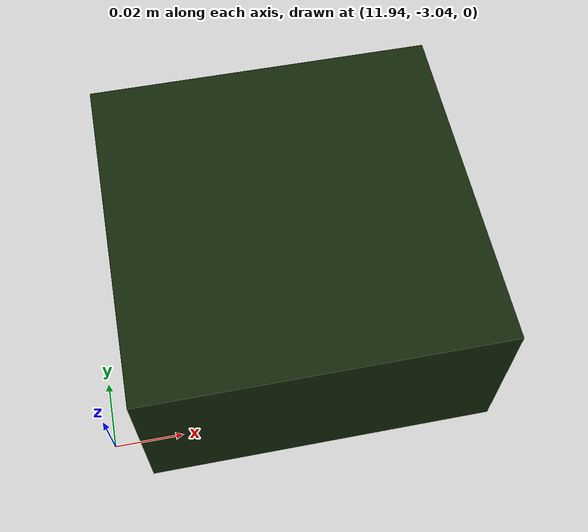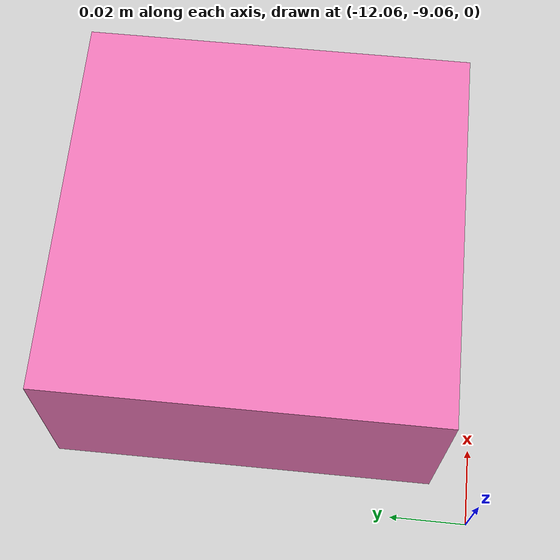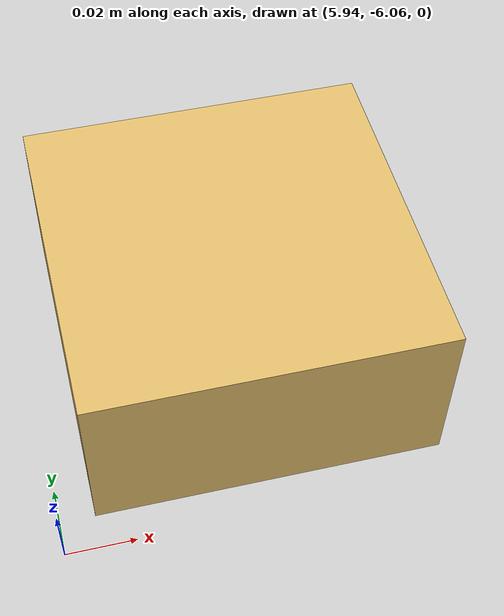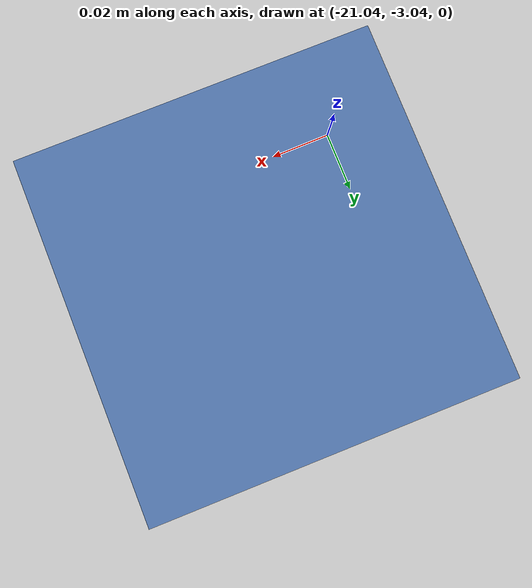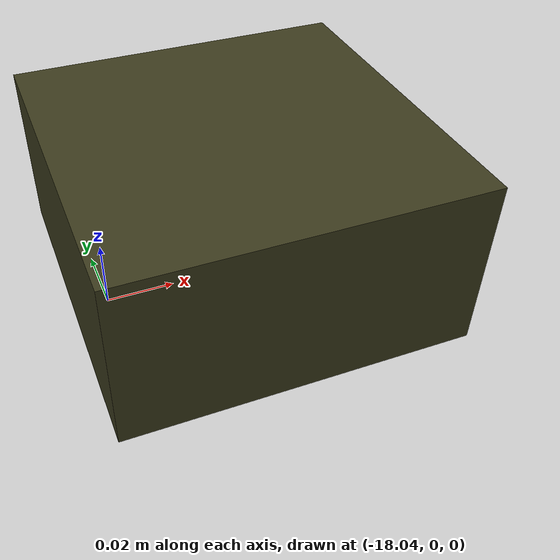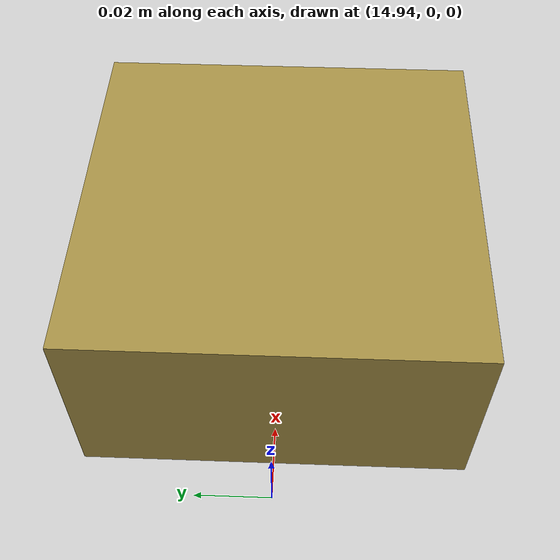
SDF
<?xml version="1.0" ?>
<sdf version="1.6">
  <world name="my_world">
   <gravity>0 0 -9.8</gravity>
    <model name='ground_plane'>
      <static>1</static>
      <link name='link'>
        <collision name='collision'>
          <geometry>
            <plane>
              <normal>0 0 1</normal>
              <size>200 200</size>
            </plane>
          </geometry>
          <surface>
            <friction>
              <ode>
                <mu>100</mu>
                <mu2>50</mu2>
              </ode>
              <torsional>
                <ode/>
              </torsional>
            </friction>
            <contact>
              <ode/>
            </contact>
            <bounce/>
          </surface>
          <max_contacts>10</max_contacts>
        </collision>
        <visual name='visual'>
          <cast_shadows>0</cast_shadows>
          <geometry>
            <plane>
              <normal>0 0 1</normal>
              <size>200 200</size>
            </plane>
          </geometry>
          <geometry>
            <mesh>
              <uri>file://media/materials/textures/grid_square.dae</uri>
              <scale>1 1 1</scale> <!-- Adjust the length and width of each grid square -->
            </mesh>
          </geometry>
          <material>
            <script>
              <uri>file://media/materials/scripts/gazebo.material</uri>
              <name>Gazebo/Grey</name>
            </script>
          </material>
        </visual>
        <self_collide>0</self_collide>
        <enable_wind>0</enable_wind>
        <kinematic>0</kinematic>
      </link>
    </model>

      <model name="AddisAbaba">
      <pose>0 0 0 0 -0 0</pose>
      <static>true</static>
      <link name='link'>
        <visual name='visual'>
          <geometry>
            <box>
              <size>0.1 0.1 0.1</size>
            </box>
          </geometry>
          <material>
            <ambient>0.20301479589125992 0.012778125704080656 0.9803190365854526 1</ambient>
            <diffuse>0.20301479589125992 0.012778125704080656 0.9803190365854526 1</diffuse>
            <emissive>0.20301479589125992 0.012778125704080656 0.9803190365854526 1</emissive>
          </material>
        </visual>
        <self_collide>0</self_collide>
        <inertial>
          <pose>0 0 0 0 -0 0</pose>
          <inertia>
            <ixx>1</ixx>
            <ixy>0</ixy>
            <ixz>0</ixz>
            <iyy>1</iyy>
            <iyz>0</iyz>
            <izz>1</izz>
          </inertia>
          <mass>1</mass>
        </inertial>
        <enable_wind>0</enable_wind>
        <kinematic>0</kinematic>
      </link>
    </model>

      <model name="Debrebirhan">
      <pose>3 3 0 0 -0 0</pose>
      <static>true</static>
      <link name='link'>
        <visual name='visual'>
          <geometry>
            <box>
              <size>0.1 0.1 0.1</size>
            </box>
          </geometry>
          <material>
            <ambient>0.010998680353502155 0.10414494394148321 0.07623011025620385 1</ambient>
            <diffuse>0.010998680353502155 0.10414494394148321 0.07623011025620385 1</diffuse>
            <emissive>0.010998680353502155 0.10414494394148321 0.07623011025620385 1</emissive>
          </material>
        </visual>
        <self_collide>0</self_collide>
        <inertial>
          <pose>0 0 0 0 -0 0</pose>
          <inertia>
            <ixx>1</ixx>
            <ixy>0</ixy>
            <ixz>0</ixz>
            <iyy>1</iyy>
            <iyz>0</iyz>
            <izz>1</izz>
          </inertia>
          <mass>1</mass>
        </inertial>
        <enable_wind>0</enable_wind>
        <kinematic>0</kinematic>
      </link>
    </model>

      <model name="Adama">
      <pose>3 0 0 0 -0 0</pose>
      <static>true</static>
      <link name='link'>
        <visual name='visual'>
          <geometry>
            <box>
              <size>0.1 0.1 0.1</size>
            </box>
          </geometry>
          <material>
            <ambient>0.905742001813767 0.571463655940841 0.5598265238198772 1</ambient>
            <diffuse>0.905742001813767 0.571463655940841 0.5598265238198772 1</diffuse>
            <emissive>0.905742001813767 0.571463655940841 0.5598265238198772 1</emissive>
          </material>
        </visual>
        <self_collide>0</self_collide>
        <inertial>
          <pose>0 0 0 0 -0 0</pose>
          <inertia>
            <ixx>1</ixx>
            <ixy>0</ixy>
            <ixz>0</ixz>
            <iyy>1</iyy>
            <iyz>0</iyz>
            <izz>1</izz>
          </inertia>
          <mass>1</mass>
        </inertial>
        <enable_wind>0</enable_wind>
        <kinematic>0</kinematic>
      </link>
    </model>

      <model name="Batu">
      <pose>0 -3 0 0 -0 0</pose>
      <static>true</static>
      <link name='link'>
        <visual name='visual'>
          <geometry>
            <box>
              <size>0.1 0.1 0.1</size>
            </box>
          </geometry>
          <material>
            <ambient>0.16129224939287234 0.6905062926652275 0.9367002350211904 1</ambient>
            <diffuse>0.16129224939287234 0.6905062926652275 0.9367002350211904 1</diffuse>
            <emissive>0.16129224939287234 0.6905062926652275 0.9367002350211904 1</emissive>
          </material>
        </visual>
        <self_collide>0</self_collide>
        <inertial>
          <pose>0 0 0 0 -0 0</pose>
          <inertia>
            <ixx>1</ixx>
            <ixy>0</ixy>
            <ixz>0</ixz>
            <iyy>1</iyy>
            <iyz>0</iyz>
            <izz>1</izz>
          </inertia>
          <mass>1</mass>
        </inertial>
        <enable_wind>0</enable_wind>
        <kinematic>0</kinematic>
      </link>
    </model>

      <model name="Assela">
      <pose>6 -3 0 0 -0 0</pose>
      <static>true</static>
      <link name='link'>
        <visual name='visual'>
          <geometry>
            <box>
              <size>0.1 0.1 0.1</size>
            </box>
          </geometry>
          <material>
            <ambient>0.44919793513015127 0.8666901576843767 0.1377827231155372 1</ambient>
            <diffuse>0.44919793513015127 0.8666901576843767 0.1377827231155372 1</diffuse>
            <emissive>0.44919793513015127 0.8666901576843767 0.1377827231155372 1</emissive>
          </material>
        </visual>
        <self_collide>0</self_collide>
        <inertial>
          <pose>0 0 0 0 -0 0</pose>
          <inertia>
            <ixx>1</ixx>
            <ixy>0</ixy>
            <ixz>0</ixz>
            <iyy>1</iyy>
            <iyz>0</iyz>
            <izz>1</izz>
          </inertia>
          <mass>1</mass>
        </inertial>
        <enable_wind>0</enable_wind>
        <kinematic>0</kinematic>
      </link>
    </model>

      <model name="Shashemene">
      <pose>0 -6 0 0 -0 0</pose>
      <static>true</static>
      <link name='link'>
        <visual name='visual'>
          <geometry>
            <box>
              <size>0.1 0.1 0.1</size>
            </box>
          </geometry>
          <material>
            <ambient>0.5813934433589399 0.7209000272262062 0.19168905165041072 1</ambient>
            <diffuse>0.5813934433589399 0.7209000272262062 0.19168905165041072 1</diffuse>
            <emissive>0.5813934433589399 0.7209000272262062 0.19168905165041072 1</emissive>
          </material>
        </visual>
        <self_collide>0</self_collide>
        <inertial>
          <pose>0 0 0 0 -0 0</pose>
          <inertia>
            <ixx>1</ixx>
            <ixy>0</ixy>
            <ixz>0</ixz>
            <iyy>1</iyy>
            <iyz>0</iyz>
            <izz>1</izz>
          </inertia>
          <mass>1</mass>
        </inertial>
        <enable_wind>0</enable_wind>
        <kinematic>0</kinematic>
      </link>
    </model>

      <model name="Hawasa">
      <pose>0 -9 0 0 -0 0</pose>
      <static>true</static>
      <link name='link'>
        <visual name='visual'>
          <geometry>
            <box>
              <size>0.1 0.1 0.1</size>
            </box>
          </geometry>
          <material>
            <ambient>0.9250156626246874 0.8664165859695948 0.09542372226017093 1</ambient>
            <diffuse>0.9250156626246874 0.8664165859695948 0.09542372226017093 1</diffuse>
            <emissive>0.9250156626246874 0.8664165859695948 0.09542372226017093 1</emissive>
          </material>
        </visual>
        <self_collide>0</self_collide>
        <inertial>
          <pose>0 0 0 0 -0 0</pose>
          <inertia>
            <ixx>1</ixx>
            <ixy>0</ixy>
            <ixz>0</ixz>
            <iyy>1</iyy>
            <iyz>0</iyz>
            <izz>1</izz>
          </inertia>
          <mass>1</mass>
        </inertial>
        <enable_wind>0</enable_wind>
        <kinematic>0</kinematic>
      </link>
    </model>

      <model name="Dilla">
      <pose>0 -12 0 0 -0 0</pose>
      <static>true</static>
      <link name='link'>
        <visual name='visual'>
          <geometry>
            <box>
              <size>0.1 0.1 0.1</size>
            </box>
          </geometry>
          <material>
            <ambient>0.6931341163378446 0.7696157981281487 0.9480996090134435 1</ambient>
            <diffuse>0.6931341163378446 0.7696157981281487 0.9480996090134435 1</diffuse>
            <emissive>0.6931341163378446 0.7696157981281487 0.9480996090134435 1</emissive>
          </material>
        </visual>
        <self_collide>0</self_collide>
        <inertial>
          <pose>0 0 0 0 -0 0</pose>
          <inertia>
            <ixx>1</ixx>
            <ixy>0</ixy>
            <ixz>0</ixz>
            <iyy>1</iyy>
            <iyz>0</iyz>
            <izz>1</izz>
          </inertia>
          <mass>1</mass>
        </inertial>
        <enable_wind>0</enable_wind>
        <kinematic>0</kinematic>
      </link>
    </model>

      <model name="Assasa">
      <pose>6 -6 0 0 -0 0</pose>
      <static>true</static>
      <link name='link'>
        <visual name='visual'>
          <geometry>
            <box>
              <size>0.1 0.1 0.1</size>
            </box>
          </geometry>
          <material>
            <ambient>0.8843459530988645 0.7404497262645201 0.425765820442187 1</ambient>
            <diffuse>0.8843459530988645 0.7404497262645201 0.425765820442187 1</diffuse>
            <emissive>0.8843459530988645 0.7404497262645201 0.425765820442187 1</emissive>
          </material>
        </visual>
        <self_collide>0</self_collide>
        <inertial>
          <pose>0 0 0 0 -0 0</pose>
          <inertia>
            <ixx>1</ixx>
            <ixy>0</ixy>
            <ixz>0</ixz>
            <iyy>1</iyy>
            <iyz>0</iyz>
            <izz>1</izz>
          </inertia>
          <mass>1</mass>
        </inertial>
        <enable_wind>0</enable_wind>
        <kinematic>0</kinematic>
      </link>
    </model>

      <model name="Dodolla">
      <pose>6 -9 0 0 -0 0</pose>
      <static>true</static>
      <link name='link'>
        <visual name='visual'>
          <geometry>
            <box>
              <size>0.1 0.1 0.1</size>
            </box>
          </geometry>
          <material>
            <ambient>0.8487661904955687 0.005414535134867449 0.937705996392174 1</ambient>
            <diffuse>0.8487661904955687 0.005414535134867449 0.937705996392174 1</diffuse>
            <emissive>0.8487661904955687 0.005414535134867449 0.937705996392174 1</emissive>
          </material>
        </visual>
        <self_collide>0</self_collide>
        <inertial>
          <pose>0 0 0 0 -0 0</pose>
          <inertia>
            <ixx>1</ixx>
            <ixy>0</ixy>
            <ixz>0</ixz>
            <iyy>1</iyy>
            <iyz>0</iyz>
            <izz>1</izz>
          </inertia>
          <mass>1</mass>
        </inertial>
        <enable_wind>0</enable_wind>
        <kinematic>0</kinematic>
      </link>
    </model>

      <model name="Bale">
      <pose>9 -9 0 0 -0 0</pose>
      <static>true</static>
      <link name='link'>
        <visual name='visual'>
          <geometry>
            <box>
              <size>0.1 0.1 0.1</size>
            </box>
          </geometry>
          <material>
            <ambient>0.5362153725453872 0.4076843066428488 0.38989937705683453 1</ambient>
            <diffuse>0.5362153725453872 0.4076843066428488 0.38989937705683453 1</diffuse>
            <emissive>0.5362153725453872 0.4076843066428488 0.38989937705683453 1</emissive>
          </material>
        </visual>
        <self_collide>0</self_collide>
        <inertial>
          <pose>0 0 0 0 -0 0</pose>
          <inertia>
            <ixx>1</ixx>
            <ixy>0</ixy>
            <ixz>0</ixz>
            <iyy>1</iyy>
            <iyz>0</iyz>
            <izz>1</izz>
          </inertia>
          <mass>1</mass>
        </inertial>
        <enable_wind>0</enable_wind>
        <kinematic>0</kinematic>
      </link>
    </model>

      <model name="Goba">
      <pose>12 -6 0 0 -0 0</pose>
      <static>true</static>
      <link name='link'>
        <visual name='visual'>
          <geometry>
            <box>
              <size>0.1 0.1 0.1</size>
            </box>
          </geometry>
          <material>
            <ambient>0.9102019717240064 0.8815367151622633 0.7082295483483607 1</ambient>
            <diffuse>0.9102019717240064 0.8815367151622633 0.7082295483483607 1</diffuse>
            <emissive>0.9102019717240064 0.8815367151622633 0.7082295483483607 1</emissive>
          </material>
        </visual>
        <self_collide>0</self_collide>
        <inertial>
          <pose>0 0 0 0 -0 0</pose>
          <inertia>
            <ixx>1</ixx>
            <ixy>0</ixy>
            <ixz>0</ixz>
            <iyy>1</iyy>
            <iyz>0</iyz>
            <izz>1</izz>
          </inertia>
          <mass>1</mass>
        </inertial>
        <enable_wind>0</enable_wind>
        <kinematic>0</kinematic>
      </link>
    </model>

      <model name="Softoumer">
      <pose>12 -9 0 0 -0 0</pose>
      <static>true</static>
      <link name='link'>
        <visual name='visual'>
          <geometry>
            <box>
              <size>0.1 0.1 0.1</size>
            </box>
          </geometry>
          <material>
            <ambient>0.4160075134199077 0.5903030227425646 0.9478616279459531 1</ambient>
            <diffuse>0.4160075134199077 0.5903030227425646 0.9478616279459531 1</diffuse>
            <emissive>0.4160075134199077 0.5903030227425646 0.9478616279459531 1</emissive>
          </material>
        </visual>
        <self_collide>0</self_collide>
        <inertial>
          <pose>0 0 0 0 -0 0</pose>
          <inertia>
            <ixx>1</ixx>
            <ixy>0</ixy>
            <ixz>0</ixz>
            <iyy>1</iyy>
            <iyz>0</iyz>
            <izz>1</izz>
          </inertia>
          <mass>1</mass>
        </inertial>
        <enable_wind>0</enable_wind>
        <kinematic>0</kinematic>
      </link>
    </model>

      <model name="Matahara">
      <pose>6 0 0 0 -0 0</pose>
      <static>true</static>
      <link name='link'>
        <visual name='visual'>
          <geometry>
            <box>
              <size>0.1 0.1 0.1</size>
            </box>
          </geometry>
          <material>
            <ambient>0.8387216221632343 0.1905956986310483 0.3499145567811015 1</ambient>
            <diffuse>0.8387216221632343 0.1905956986310483 0.3499145567811015 1</diffuse>
            <emissive>0.8387216221632343 0.1905956986310483 0.3499145567811015 1</emissive>
          </material>
        </visual>
        <self_collide>0</self_collide>
        <inertial>
          <pose>0 0 0 0 -0 0</pose>
          <inertia>
            <ixx>1</ixx>
            <ixy>0</ixy>
            <ixz>0</ixz>
            <iyy>1</iyy>
            <iyz>0</iyz>
            <izz>1</izz>
          </inertia>
          <mass>1</mass>
        </inertial>
        <enable_wind>0</enable_wind>
        <kinematic>0</kinematic>
      </link>
    </model>

      <model name="Awash">
      <pose>9 0 0 0 -0 0</pose>
      <static>true</static>
      <link name='link'>
        <visual name='visual'>
          <geometry>
            <box>
              <size>0.1 0.1 0.1</size>
            </box>
          </geometry>
          <material>
            <ambient>0.17413967358404658 0.544803622906542 0.8291015653172878 1</ambient>
            <diffuse>0.17413967358404658 0.544803622906542 0.8291015653172878 1</diffuse>
            <emissive>0.17413967358404658 0.544803622906542 0.8291015653172878 1</emissive>
          </material>
        </visual>
        <self_collide>0</self_collide>
        <inertial>
          <pose>0 0 0 0 -0 0</pose>
          <inertia>
            <ixx>1</ixx>
            <ixy>0</ixy>
            <ixz>0</ixz>
            <iyy>1</iyy>
            <iyz>0</iyz>
            <izz>1</izz>
          </inertia>
          <mass>1</mass>
        </inertial>
        <enable_wind>0</enable_wind>
        <kinematic>0</kinematic>
      </link>
    </model>

      <model name="Harar">
      <pose>12 -3 0 0 -0 0</pose>
      <static>true</static>
      <link name='link'>
        <visual name='visual'>
          <geometry>
            <box>
              <size>0.1 0.1 0.1</size>
            </box>
          </geometry>
          <material>
            <ambient>0.06901981834231041 0.15195140534344131 0.029405350844161515 1</ambient>
            <diffuse>0.06901981834231041 0.15195140534344131 0.029405350844161515 1</diffuse>
            <emissive>0.06901981834231041 0.15195140534344131 0.029405350844161515 1</emissive>
          </material>
        </visual>
        <self_collide>0</self_collide>
        <inertial>
          <pose>0 0 0 0 -0 0</pose>
          <inertia>
            <ixx>1</ixx>
            <ixy>0</ixy>
            <ixz>0</ixz>
            <iyy>1</iyy>
            <iyz>0</iyz>
            <izz>1</izz>
          </inertia>
          <mass>1</mass>
        </inertial>
        <enable_wind>0</enable_wind>
        <kinematic>0</kinematic>
      </link>
    </model>

      <model name="Diredawa">
      <pose>15 0 0 0 -0 0</pose>
      <static>true</static>
      <link name='link'>
        <visual name='visual'>
          <geometry>
            <box>
              <size>0.1 0.1 0.1</size>
            </box>
          </geometry>
          <material>
            <ambient>0.6469922542265653 0.5643643848228544 0.27311064247311156 1</ambient>
            <diffuse>0.6469922542265653 0.5643643848228544 0.27311064247311156 1</diffuse>
            <emissive>0.6469922542265653 0.5643643848228544 0.27311064247311156 1</emissive>
          </material>
        </visual>
        <self_collide>0</self_collide>
        <inertial>
          <pose>0 0 0 0 -0 0</pose>
          <inertia>
            <ixx>1</ixx>
            <ixy>0</ixy>
            <ixz>0</ixz>
            <iyy>1</iyy>
            <iyz>0</iyz>
            <izz>1</izz>
          </inertia>
          <mass>1</mass>
        </inertial>
        <enable_wind>0</enable_wind>
        <kinematic>0</kinematic>
      </link>
    </model>

      <model name="Babile">
      <pose>18 -3 0 0 -0 0</pose>
      <static>true</static>
      <link name='link'>
        <visual name='visual'>
          <geometry>
            <box>
              <size>0.1 0.1 0.1</size>
            </box>
          </geometry>
          <material>
            <ambient>0.9382394927513139 0.46831021634216285 0.06481220498117957 1</ambient>
            <diffuse>0.9382394927513139 0.46831021634216285 0.06481220498117957 1</diffuse>
            <emissive>0.9382394927513139 0.46831021634216285 0.06481220498117957 1</emissive>
          </material>
        </visual>
        <self_collide>0</self_collide>
        <inertial>
          <pose>0 0 0 0 -0 0</pose>
          <inertia>
            <ixx>1</ixx>
            <ixy>0</ixy>
            <ixz>0</ixz>
            <iyy>1</iyy>
            <iyz>0</iyz>
            <izz>1</izz>
          </inertia>
          <mass>1</mass>
        </inertial>
        <enable_wind>0</enable_wind>
        <kinematic>0</kinematic>
      </link>
    </model>

      <model name="Jigjiga">
      <pose>21 -3 0 0 -0 0</pose>
      <static>true</static>
      <link name='link'>
        <visual name='visual'>
          <geometry>
            <box>
              <size>0.1 0.1 0.1</size>
            </box>
          </geometry>
          <material>
            <ambient>0.32907991694134264 0.733064810220543 0.6347707464636667 1</ambient>
            <diffuse>0.32907991694134264 0.733064810220543 0.6347707464636667 1</diffuse>
            <emissive>0.32907991694134264 0.733064810220543 0.6347707464636667 1</emissive>
          </material>
        </visual>
        <self_collide>0</self_collide>
        <inertial>
          <pose>0 0 0 0 -0 0</pose>
          <inertia>
            <ixx>1</ixx>
            <ixy>0</ixy>
            <ixz>0</ixz>
            <iyy>1</iyy>
            <iyz>0</iyz>
            <izz>1</izz>
          </inertia>
          <mass>1</mass>
        </inertial>
        <enable_wind>0</enable_wind>
        <kinematic>0</kinematic>
      </link>
    </model>

      <model name="Dagahabur">
      <pose>21 -6 0 0 -0 0</pose>
      <static>true</static>
      <link name='link'>
        <visual name='visual'>
          <geometry>
            <box>
              <size>0.1 0.1 0.1</size>
            </box>
          </geometry>
          <material>
            <ambient>0.8389898909240476 0.5855252116427512 0.09942308523670662 1</ambient>
            <diffuse>0.8389898909240476 0.5855252116427512 0.09942308523670662 1</diffuse>
            <emissive>0.8389898909240476 0.5855252116427512 0.09942308523670662 1</emissive>
          </material>
        </visual>
        <self_collide>0</self_collide>
        <inertial>
          <pose>0 0 0 0 -0 0</pose>
          <inertia>
            <ixx>1</ixx>
            <ixy>0</ixy>
            <ixz>0</ixz>
            <iyy>1</iyy>
            <iyz>0</iyz>
            <izz>1</izz>
          </inertia>
          <mass>1</mass>
        </inertial>
        <enable_wind>0</enable_wind>
        <kinematic>0</kinematic>
      </link>
    </model>

      <model name="Kebridehar">
      <pose>21 -9 0 0 -0 0</pose>
      <static>true</static>
      <link name='link'>
        <visual name='visual'>
          <geometry>
            <box>
              <size>0.1 0.1 0.1</size>
            </box>
          </geometry>
          <material>
            <ambient>0.8294077410492829 0.6300389570803534 0.8766551082795236 1</ambient>
            <diffuse>0.8294077410492829 0.6300389570803534 0.8766551082795236 1</diffuse>
            <emissive>0.8294077410492829 0.6300389570803534 0.8766551082795236 1</emissive>
          </material>
        </visual>
        <self_collide>0</self_collide>
        <inertial>
          <pose>0 0 0 0 -0 0</pose>
          <inertia>
            <ixx>1</ixx>
            <ixy>0</ixy>
            <ixz>0</ixz>
            <iyy>1</iyy>
            <iyz>0</iyz>
            <izz>1</izz>
          </inertia>
          <mass>1</mass>
        </inertial>
        <enable_wind>0</enable_wind>
        <kinematic>0</kinematic>
      </link>
    </model>

      <model name="Gode">
      <pose>21 -12 0 0 -0 0</pose>
      <static>true</static>
      <link name='link'>
        <visual name='visual'>
          <geometry>
            <box>
              <size>0.1 0.1 0.1</size>
            </box>
          </geometry>
          <material>
            <ambient>0.07632864393673788 0.20403838291827858 0.20787156784939742 1</ambient>
            <diffuse>0.07632864393673788 0.20403838291827858 0.20787156784939742 1</diffuse>
            <emissive>0.07632864393673788 0.20403838291827858 0.20787156784939742 1</emissive>
          </material>
        </visual>
        <self_collide>0</self_collide>
        <inertial>
          <pose>0 0 0 0 -0 0</pose>
          <inertia>
            <ixx>1</ixx>
            <ixy>0</ixy>
            <ixz>0</ixz>
            <iyy>1</iyy>
            <iyz>0</iyz>
            <izz>1</izz>
          </inertia>
          <mass>1</mass>
        </inertial>
        <enable_wind>0</enable_wind>
        <kinematic>0</kinematic>
      </link>
    </model>

      <model name="Chiro">
      <pose>12 0 0 0 -0 0</pose>
      <static>true</static>
      <link name='link'>
        <visual name='visual'>
          <geometry>
            <box>
              <size>0.1 0.1 0.1</size>
            </box>
          </geometry>
          <material>
            <ambient>0.8601907681398067 0.05825920717398092 0.7370345219747976 1</ambient>
            <diffuse>0.8601907681398067 0.05825920717398092 0.7370345219747976 1</diffuse>
            <emissive>0.8601907681398067 0.05825920717398092 0.7370345219747976 1</emissive>
          </material>
        </visual>
        <self_collide>0</self_collide>
        <inertial>
          <pose>0 0 0 0 -0 0</pose>
          <inertia>
            <ixx>1</ixx>
            <ixy>0</ixy>
            <ixz>0</ixz>
            <iyy>1</iyy>
            <iyz>0</iyz>
            <izz>1</izz>
          </inertia>
          <mass>1</mass>
        </inertial>
        <enable_wind>0</enable_wind>
        <kinematic>0</kinematic>
      </link>
    </model>

      <model name="Butajira">
      <pose>-3 -3 0 0 -0 0</pose>
      <static>true</static>
      <link name='link'>
        <visual name='visual'>
          <geometry>
            <box>
              <size>0.1 0.1 0.1</size>
            </box>
          </geometry>
          <material>
            <ambient>0.16957698708365154 0.39234194176986203 0.06796051087160548 1</ambient>
            <diffuse>0.16957698708365154 0.39234194176986203 0.06796051087160548 1</diffuse>
            <emissive>0.16957698708365154 0.39234194176986203 0.06796051087160548 1</emissive>
          </material>
        </visual>
        <self_collide>0</self_collide>
        <inertial>
          <pose>0 0 0 0 -0 0</pose>
          <inertia>
            <ixx>1</ixx>
            <ixy>0</ixy>
            <ixz>0</ixz>
            <iyy>1</iyy>
            <iyz>0</iyz>
            <izz>1</izz>
          </inertia>
          <mass>1</mass>
        </inertial>
        <enable_wind>0</enable_wind>
        <kinematic>0</kinematic>
      </link>
    </model>

      <model name="Nekemete">
      <pose>-12 0 0 0 -0 0</pose>
      <static>true</static>
      <link name='link'>
        <visual name='visual'>
          <geometry>
            <box>
              <size>0.1 0.1 0.1</size>
            </box>
          </geometry>
          <material>
            <ambient>0.7506951399106838 0.8392658789760813 0.09829144759587916 1</ambient>
            <diffuse>0.7506951399106838 0.8392658789760813 0.09829144759587916 1</diffuse>
            <emissive>0.7506951399106838 0.8392658789760813 0.09829144759587916 1</emissive>
          </material>
        </visual>
        <self_collide>0</self_collide>
        <inertial>
          <pose>0 0 0 0 -0 0</pose>
          <inertia>
            <ixx>1</ixx>
            <ixy>0</ixy>
            <ixz>0</ixz>
            <iyy>1</iyy>
            <iyz>0</iyz>
            <izz>1</izz>
          </inertia>
          <mass>1</mass>
        </inertial>
        <enable_wind>0</enable_wind>
        <kinematic>0</kinematic>
      </link>
    </model>

      <model name="Bedelle">
      <pose>-12 -3 0 0 -0 0</pose>
      <static>true</static>
      <link name='link'>
        <visual name='visual'>
          <geometry>
            <box>
              <size>0.1 0.1 0.1</size>
            </box>
          </geometry>
          <material>
            <ambient>0.29589866160048994 0.014362687546343178 0.5684491556231586 1</ambient>
            <diffuse>0.29589866160048994 0.014362687546343178 0.5684491556231586 1</diffuse>
            <emissive>0.29589866160048994 0.014362687546343178 0.5684491556231586 1</emissive>
          </material>
        </visual>
        <self_collide>0</self_collide>
        <inertial>
          <pose>0 0 0 0 -0 0</pose>
          <inertia>
            <ixx>1</ixx>
            <ixy>0</ixy>
            <ixz>0</ixz>
            <iyy>1</iyy>
            <iyz>0</iyz>
            <izz>1</izz>
          </inertia>
          <mass>1</mass>
        </inertial>
        <enable_wind>0</enable_wind>
        <kinematic>0</kinematic>
      </link>
    </model>

      <model name="Jimma">
      <pose>-12 -6 0 0 -0 0</pose>
      <static>true</static>
      <link name='link'>
        <visual name='visual'>
          <geometry>
            <box>
              <size>0.1 0.1 0.1</size>
            </box>
          </geometry>
          <material>
            <ambient>0.9866621632490843 0.21602473944920797 0.33168366679429184 1</ambient>
            <diffuse>0.9866621632490843 0.21602473944920797 0.33168366679429184 1</diffuse>
            <emissive>0.9866621632490843 0.21602473944920797 0.33168366679429184 1</emissive>
          </material>
        </visual>
        <self_collide>0</self_collide>
        <inertial>
          <pose>0 0 0 0 -0 0</pose>
          <inertia>
            <ixx>1</ixx>
            <ixy>0</ixy>
            <ixz>0</ixz>
            <iyy>1</iyy>
            <iyz>0</iyz>
            <izz>1</izz>
          </inertia>
          <mass>1</mass>
        </inertial>
        <enable_wind>0</enable_wind>
        <kinematic>0</kinematic>
      </link>
    </model>

      <model name="Bonga">
      <pose>-12 -9 0 0 -0 0</pose>
      <static>true</static>
      <link name='link'>
        <visual name='visual'>
          <geometry>
            <box>
              <size>0.1 0.1 0.1</size>
            </box>
          </geometry>
          <material>
            <ambient>0.9317347273842123 0.4686891633675392 0.7186576615693548 1</ambient>
            <diffuse>0.9317347273842123 0.4686891633675392 0.7186576615693548 1</diffuse>
            <emissive>0.9317347273842123 0.4686891633675392 0.7186576615693548 1</emissive>
          </material>
        </visual>
        <self_collide>0</self_collide>
        <inertial>
          <pose>0 0 0 0 -0 0</pose>
          <inertia>
            <ixx>1</ixx>
            <ixy>0</ixy>
            <ixz>0</ixz>
            <iyy>1</iyy>
            <iyz>0</iyz>
            <izz>1</izz>
          </inertia>
          <mass>1</mass>
        </inertial>
        <enable_wind>0</enable_wind>
        <kinematic>0</kinematic>
      </link>
    </model>

      <model name="Dawro">
      <pose>-12 -12 0 0 -0 0</pose>
      <static>true</static>
      <link name='link'>
        <visual name='visual'>
          <geometry>
            <box>
              <size>0.1 0.1 0.1</size>
            </box>
          </geometry>
          <material>
            <ambient>0.6030352343198566 0.2781428670999121 0.30720178987067703 1</ambient>
            <diffuse>0.6030352343198566 0.2781428670999121 0.30720178987067703 1</diffuse>
            <emissive>0.6030352343198566 0.2781428670999121 0.30720178987067703 1</emissive>
          </material>
        </visual>
        <self_collide>0</self_collide>
        <inertial>
          <pose>0 0 0 0 -0 0</pose>
          <inertia>
            <ixx>1</ixx>
            <ixy>0</ixy>
            <ixz>0</ixz>
            <iyy>1</iyy>
            <iyz>0</iyz>
            <izz>1</izz>
          </inertia>
          <mass>1</mass>
        </inertial>
        <enable_wind>0</enable_wind>
        <kinematic>0</kinematic>
      </link>
    </model>

      <model name="Ambo">
      <pose>-9 0 0 0 -0 0</pose>
      <static>true</static>
      <link name='link'>
        <visual name='visual'>
          <geometry>
            <box>
              <size>0.1 0.1 0.1</size>
            </box>
          </geometry>
          <material>
            <ambient>0.6673176292148247 0.3814051027684855 0.3906961512544498 1</ambient>
            <diffuse>0.6673176292148247 0.3814051027684855 0.3906961512544498 1</diffuse>
            <emissive>0.6673176292148247 0.3814051027684855 0.3906961512544498 1</emissive>
          </material>
        </visual>
        <self_collide>0</self_collide>
        <inertial>
          <pose>0 0 0 0 -0 0</pose>
          <inertia>
            <ixx>1</ixx>
            <ixy>0</ixy>
            <ixz>0</ixz>
            <iyy>1</iyy>
            <iyz>0</iyz>
            <izz>1</izz>
          </inertia>
          <mass>1</mass>
        </inertial>
        <enable_wind>0</enable_wind>
        <kinematic>0</kinematic>
      </link>
    </model>

      <model name="Wolkite">
      <pose>-9 -3 0 0 -0 0</pose>
      <static>true</static>
      <link name='link'>
        <visual name='visual'>
          <geometry>
            <box>
              <size>0.1 0.1 0.1</size>
            </box>
          </geometry>
          <material>
            <ambient>0.4067503839133215 0.1262810738520167 0.5165504749764901 1</ambient>
            <diffuse>0.4067503839133215 0.1262810738520167 0.5165504749764901 1</diffuse>
            <emissive>0.4067503839133215 0.1262810738520167 0.5165504749764901 1</emissive>
          </material>
        </visual>
        <self_collide>0</self_collide>
        <inertial>
          <pose>0 0 0 0 -0 0</pose>
          <inertia>
            <ixx>1</ixx>
            <ixy>0</ixy>
            <ixz>0</ixz>
            <iyy>1</iyy>
            <iyz>0</iyz>
            <izz>1</izz>
          </inertia>
          <mass>1</mass>
        </inertial>
        <enable_wind>0</enable_wind>
        <kinematic>0</kinematic>
      </link>
    </model>

      <model name="Worabe">
      <pose>-6 -3 0 0 -0 0</pose>
      <static>true</static>
      <link name='link'>
        <visual name='visual'>
          <geometry>
            <box>
              <size>0.1 0.1 0.1</size>
            </box>
          </geometry>
          <material>
            <ambient>0.43203314860128483 0.6399130728959876 0.02706403924227807 1</ambient>
            <diffuse>0.43203314860128483 0.6399130728959876 0.02706403924227807 1</diffuse>
            <emissive>0.43203314860128483 0.6399130728959876 0.02706403924227807 1</emissive>
          </material>
        </visual>
        <self_collide>0</self_collide>
        <inertial>
          <pose>0 0 0 0 -0 0</pose>
          <inertia>
            <ixx>1</ixx>
            <ixy>0</ixy>
            <ixz>0</ixz>
            <iyy>1</iyy>
            <iyz>0</iyz>
            <izz>1</izz>
          </inertia>
          <mass>1</mass>
        </inertial>
        <enable_wind>0</enable_wind>
        <kinematic>0</kinematic>
      </link>
    </model>

      <model name="Hossana">
      <pose>-6 -6 0 0 -0 0</pose>
      <static>true</static>
      <link name='link'>
        <visual name='visual'>
          <geometry>
            <box>
              <size>0.1 0.1 0.1</size>
            </box>
          </geometry>
          <material>
            <ambient>0.6383642551087358 0.5490996130812188 0.615361108970721 1</ambient>
            <diffuse>0.6383642551087358 0.5490996130812188 0.615361108970721 1</diffuse>
            <emissive>0.6383642551087358 0.5490996130812188 0.615361108970721 1</emissive>
          </material>
        </visual>
        <self_collide>0</self_collide>
        <inertial>
          <pose>0 0 0 0 -0 0</pose>
          <inertia>
            <ixx>1</ixx>
            <ixy>0</ixy>
            <ixz>0</ixz>
            <iyy>1</iyy>
            <iyz>0</iyz>
            <izz>1</izz>
          </inertia>
          <mass>1</mass>
        </inertial>
        <enable_wind>0</enable_wind>
        <kinematic>0</kinematic>
      </link>
    </model>

      <model name="Welaitasodo">
      <pose>-6 -9 0 0 -0 0</pose>
      <static>true</static>
      <link name='link'>
        <visual name='visual'>
          <geometry>
            <box>
              <size>0.1 0.1 0.1</size>
            </box>
          </geometry>
          <material>
            <ambient>0.9728331356324449 0.7750389325078672 0.17877896435397478 1</ambient>
            <diffuse>0.9728331356324449 0.7750389325078672 0.17877896435397478 1</diffuse>
            <emissive>0.9728331356324449 0.7750389325078672 0.17877896435397478 1</emissive>
          </material>
        </visual>
        <self_collide>0</self_collide>
        <inertial>
          <pose>0 0 0 0 -0 0</pose>
          <inertia>
            <ixx>1</ixx>
            <ixy>0</ixy>
            <ixz>0</ixz>
            <iyy>1</iyy>
            <iyz>0</iyz>
            <izz>1</izz>
          </inertia>
          <mass>1</mass>
        </inertial>
        <enable_wind>0</enable_wind>
        <kinematic>0</kinematic>
      </link>
    </model>

      <model name="Arbaminch">
      <pose>-6 -12 0 0 -0 0</pose>
      <static>true</static>
      <link name='link'>
        <visual name='visual'>
          <geometry>
            <box>
              <size>0.1 0.1 0.1</size>
            </box>
          </geometry>
          <material>
            <ambient>0.8714865281414128 0.7601684305459027 0.3176584885352314 1</ambient>
            <diffuse>0.8714865281414128 0.7601684305459027 0.3176584885352314 1</diffuse>
            <emissive>0.8714865281414128 0.7601684305459027 0.3176584885352314 1</emissive>
          </material>
        </visual>
        <self_collide>0</self_collide>
        <inertial>
          <pose>0 0 0 0 -0 0</pose>
          <inertia>
            <ixx>1</ixx>
            <ixy>0</ixy>
            <ixz>0</ixz>
            <iyy>1</iyy>
            <iyz>0</iyz>
            <izz>1</izz>
          </inertia>
          <mass>1</mass>
        </inertial>
        <enable_wind>0</enable_wind>
        <kinematic>0</kinematic>
      </link>
    </model>

      <model name="Gambella">
      <pose>-21 0 0 0 -0 0</pose>
      <static>true</static>
      <link name='link'>
        <visual name='visual'>
          <geometry>
            <box>
              <size>0.1 0.1 0.1</size>
            </box>
          </geometry>
          <material>
            <ambient>0.8579304144373652 0.9922227292560135 0.9607412454806471 1</ambient>
            <diffuse>0.8579304144373652 0.9922227292560135 0.9607412454806471 1</diffuse>
            <emissive>0.8579304144373652 0.9922227292560135 0.9607412454806471 1</emissive>
          </material>
        </visual>
        <self_collide>0</self_collide>
        <inertial>
          <pose>0 0 0 0 -0 0</pose>
          <inertia>
            <ixx>1</ixx>
            <ixy>0</ixy>
            <ixz>0</ixz>
            <iyy>1</iyy>
            <iyz>0</iyz>
            <izz>1</izz>
          </inertia>
          <mass>1</mass>
        </inertial>
        <enable_wind>0</enable_wind>
        <kinematic>0</kinematic>
      </link>
    </model>

      <model name="Dembidollo">
      <pose>-18 0 0 0 -0 0</pose>
      <static>true</static>
      <link name='link'>
        <visual name='visual'>
          <geometry>
            <box>
              <size>0.1 0.1 0.1</size>
            </box>
          </geometry>
          <material>
            <ambient>0.2307474216842329 0.22897540682483464 0.11102327805155665 1</ambient>
            <diffuse>0.2307474216842329 0.22897540682483464 0.11102327805155665 1</diffuse>
            <emissive>0.2307474216842329 0.22897540682483464 0.11102327805155665 1</emissive>
          </material>
        </visual>
        <self_collide>0</self_collide>
        <inertial>
          <pose>0 0 0 0 -0 0</pose>
          <inertia>
            <ixx>1</ixx>
            <ixy>0</ixy>
            <ixz>0</ixz>
            <iyy>1</iyy>
            <iyz>0</iyz>
            <izz>1</izz>
          </inertia>
          <mass>1</mass>
        </inertial>
        <enable_wind>0</enable_wind>
        <kinematic>0</kinematic>
      </link>
    </model>

      <model name="Gimbi">
      <pose>-15 0 0 0 -0 0</pose>
      <static>true</static>
      <link name='link'>
        <visual name='visual'>
          <geometry>
            <box>
              <size>0.1 0.1 0.1</size>
            </box>
          </geometry>
          <material>
            <ambient>0.6824275136709127 0.2651236603660809 0.41849467762674075 1</ambient>
            <diffuse>0.6824275136709127 0.2651236603660809 0.41849467762674075 1</diffuse>
            <emissive>0.6824275136709127 0.2651236603660809 0.41849467762674075 1</emissive>
          </material>
        </visual>
        <self_collide>0</self_collide>
        <inertial>
          <pose>0 0 0 0 -0 0</pose>
          <inertia>
            <ixx>1</ixx>
            <ixy>0</ixy>
            <ixz>0</ixz>
            <iyy>1</iyy>
            <iyz>0</iyz>
            <izz>1</izz>
          </inertia>
          <mass>1</mass>
        </inertial>
        <enable_wind>0</enable_wind>
        <kinematic>0</kinematic>
      </link>
    </model>

      <model name="Gore">
      <pose>-21 -3 0 0 -0 0</pose>
      <static>true</static>
      <link name='link'>
        <visual name='visual'>
          <geometry>
            <box>
              <size>0.1 0.1 0.1</size>
            </box>
          </geometry>
          <material>
            <ambient>0.32583981332091805 0.4715440540741991 0.6913450759628049 1</ambient>
            <diffuse>0.32583981332091805 0.4715440540741991 0.6913450759628049 1</diffuse>
            <emissive>0.32583981332091805 0.4715440540741991 0.6913450759628049 1</emissive>
          </material>
        </visual>
        <self_collide>0</self_collide>
        <inertial>
          <pose>0 0 0 0 -0 0</pose>
          <inertia>
            <ixx>1</ixx>
            <ixy>0</ixy>
            <ixz>0</ixz>
            <iyy>1</iyy>
            <iyz>0</iyz>
            <izz>1</izz>
          </inertia>
          <mass>1</mass>
        </inertial>
        <enable_wind>0</enable_wind>
        <kinematic>0</kinematic>
      </link>
    </model>

      <model name="Tepi">
      <pose>-21 -6 0 0 -0 0</pose>
      <static>true</static>
      <link name='link'>
        <visual name='visual'>
          <geometry>
            <box>
              <size>0.1 0.1 0.1</size>
            </box>
          </geometry>
          <material>
            <ambient>0.04697369797091 0.09344803882015706 0.5352495380537443 1</ambient>
            <diffuse>0.04697369797091 0.09344803882015706 0.5352495380537443 1</diffuse>
            <emissive>0.04697369797091 0.09344803882015706 0.5352495380537443 1</emissive>
          </material>
        </visual>
        <self_collide>0</self_collide>
        <inertial>
          <pose>0 0 0 0 -0 0</pose>
          <inertia>
            <ixx>1</ixx>
            <ixy>0</ixy>
            <ixz>0</ixz>
            <iyy>1</iyy>
            <iyz>0</iyz>
            <izz>1</izz>
          </inertia>
          <mass>1</mass>
        </inertial>
        <enable_wind>0</enable_wind>
        <kinematic>0</kinematic>
      </link>
    </model>

      <model name="Mezanteferi">
      <pose>-21 -9 0 0 -0 0</pose>
      <static>true</static>
      <link name='link'>
        <visual name='visual'>
          <geometry>
            <box>
              <size>0.1 0.1 0.1</size>
            </box>
          </geometry>
          <material>
            <ambient>0.34155946169913354 0.792542070721433 0.48680190304015813 1</ambient>
            <diffuse>0.34155946169913354 0.792542070721433 0.48680190304015813 1</diffuse>
            <emissive>0.34155946169913354 0.792542070721433 0.48680190304015813 1</emissive>
          </material>
        </visual>
        <self_collide>0</self_collide>
        <inertial>
          <pose>0 0 0 0 -0 0</pose>
          <inertia>
            <ixx>1</ixx>
            <ixy>0</ixy>
            <ixz>0</ixz>
            <iyy>1</iyy>
            <iyz>0</iyz>
            <izz>1</izz>
          </inertia>
          <mass>1</mass>
        </inertial>
        <enable_wind>0</enable_wind>
        <kinematic>0</kinematic>
      </link>
    </model>

    <magnetic_field>6e-06 2.3e-05 -4.2e-05</magnetic_field>
    <atmosphere type='adiabatic'/>
    <scene>
      <ambient>0.4 0.4 0.4 1</ambient>
      <background>0.7 0.7 0.7 1</background>
      <shadows>1</shadows>
    </scene>
    <wind/>
    <spherical_coordinates>
      <surface_model>EARTH_WGS84</surface_model>
      <latitude_deg>0</latitude_deg>
      <longitude_deg>0</longitude_deg>
      <elevation>0</elevation>
      <heading_deg>0</heading_deg>
    </spherical_coordinates>
    <gui fullscreen='0'>
      <camera name='user_camera'>
        <pose>8.08586 -2.26993 2.95467 0 0.275643 2.3562</pose>
        <view_controller>orbit</view_controller>
        <projection_type>perspective</projection_type>
      </camera>
    </gui>
    <!-- Import our own robot and set the location where we want to spawn it -->
  </world>
</sdf>
